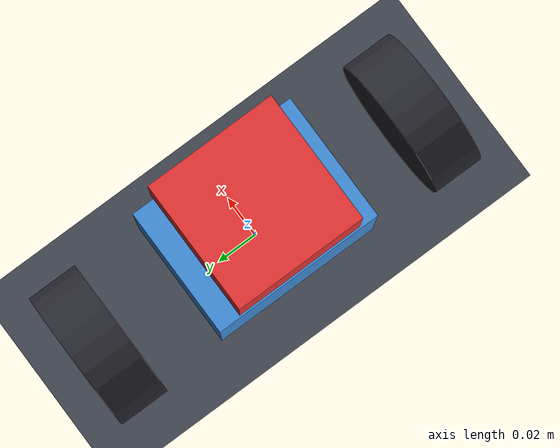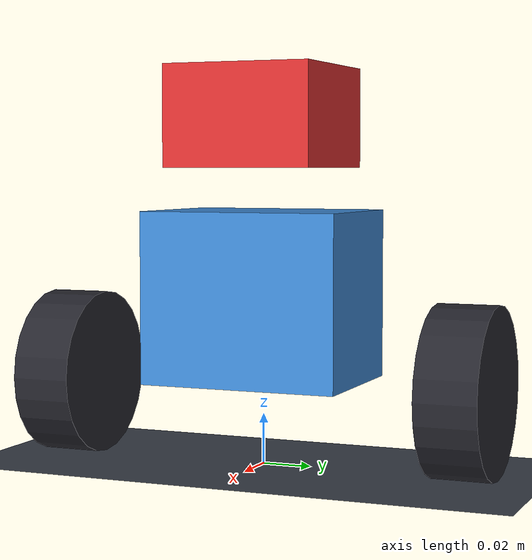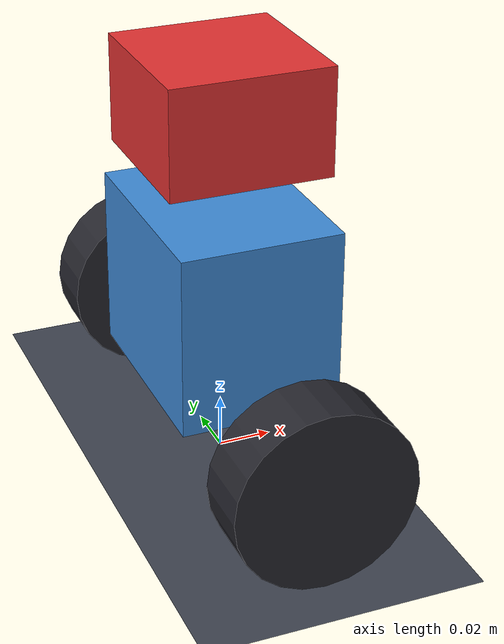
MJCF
<mujoco model="dip_e026_real">
  <compiler angle="radian" autolimits="true" balanceinertia="true"/>
  <option timestep="0.001" integrator="Euler" gravity="0 0 -9.81"
          cone="elliptic" impratio="10"/>
  <default>
    <geom friction="0.90 0.005 0.0001" solref="0.020 1" solimp="0.95 0.99 0.001"/>
    <joint damping="0"/>
  </default>
  <asset>
    <texture name="grid" type="2d" builtin="checker" width="512" height="512"
             rgb1="0.22 0.24 0.28" rgb2="0.28 0.30 0.35"/>
    <material name="grid" texture="grid" texrepeat="12 12"/>
  </asset>
  <worldbody>
    <light pos="0 0 4" dir="0 0 -1"/>
    <geom name="floor" type="plane" size="0 0 0.05" material="grid"
          friction="0.90 0.005 0.0001"/>
    <!-- chassis origin sits at the axle, wheel radius 0.0335 above ground -->
    <body name="chassis" pos="0 0 0.0335">
      <freejoint name="root"/>
      <!-- measured: body 0.872 kg, COM 34.0 mm above axle,
           I_body 1.4229e-3 about the body COM (pitch), I_yaw 1.9093e-3 -->
      <inertial pos="0 0 0.0340" mass="0.8720"
                diaginertia="0.0014229 0.0014229 0.0019093"/>
      <geom name="body" type="box" pos="0 0 0.0340" size="0.030 0.040 0.034"
            rgba="0.25 0.55 0.85 1" mass="0"/>
      <body name="payload_body" pos="0 0 0.1050">
        <!-- rated payload 4.0 kg at 0.105 m above the axle -->
        <geom name="payload_geom" type="box" size="0.03 0.03 0.02"
              rgba="0.9 0.2 0.2 1" mass="0" contype="0" conaffinity="0"/>
      </body>
      <body name="wheel_l" pos="0 0.0835 0">
        <joint name="jw_l" type="hinge" axis="0 1 0" armature="0"/>
        <inertial pos="0 0 0" mass="0.0350"
                  diaginertia="9.82e-06 1.964e-05 9.82e-06"/>
        <geom name="gw_l" type="cylinder" size="0.0335 0.0120"
              quat="0.7071068 0.7071068 0 0" rgba="0.15 0.15 0.18 1" mass="0"/>
      </body>
      <body name="wheel_r" pos="0 -0.0835 0">
        <joint name="jw_r" type="hinge" axis="0 1 0" armature="0"/>
        <inertial pos="0 0 0" mass="0.0350"
                  diaginertia="9.82e-06 1.964e-05 9.82e-06"/>
        <geom name="gw_r" type="cylinder" size="0.0335 0.0120"
              quat="0.7071068 0.7071068 0 0" rgba="0.15 0.15 0.18 1" mass="0"/>
      </body>
      <body name="rotor_l" pos="0 0.0835 0">
        <joint name="jr_l" type="hinge" axis="0 1 0" armature="2.25e-3"/>
        <inertial pos="0 0 0" mass="1e-4" diaginertia="1e-9 1e-9 1e-9"/>
      </body>
      <body name="rotor_r" pos="0 -0.0835 0">
        <joint name="jr_r" type="hinge" axis="0 1 0" armature="2.25e-3"/>
        <inertial pos="0 0 0" mass="1e-4" diaginertia="1e-9 1e-9 1e-9"/>
      </body>
    </body>
  </worldbody>
  <tendon>
    <fixed name="bl_l" limited="true" range="-1e-6 1e-6" solreflimit="0.002 1">
      <joint joint="jr_l" coef="1"/>
      <joint joint="jw_l" coef="-1"/>
    </fixed>
    <fixed name="bl_r" limited="true" range="-1e-6 1e-6" solreflimit="0.002 1">
      <joint joint="jr_r" coef="1"/>
      <joint joint="jw_r" coef="-1"/>
    </fixed>
  </tendon>
  <actuator>
    <!-- driver limit 0.4 Nm at the wheel (motor stalls at 0.5679); the motor
         drives the rotor, which drives the wheel through the slack -->
    <motor name="m_l" joint="jr_l" gear="1" ctrlrange="-0.4000 0.4000"/>
    <motor name="m_r" joint="jr_r" gear="1" ctrlrange="-0.4000 0.4000"/>
  </actuator>
</mujoco>
